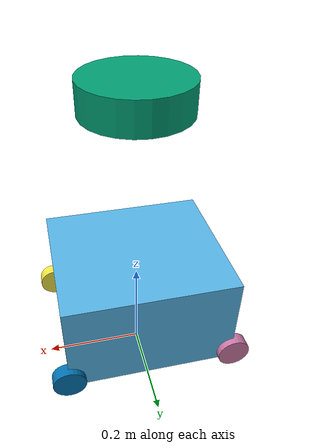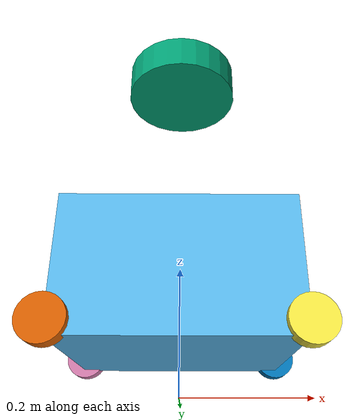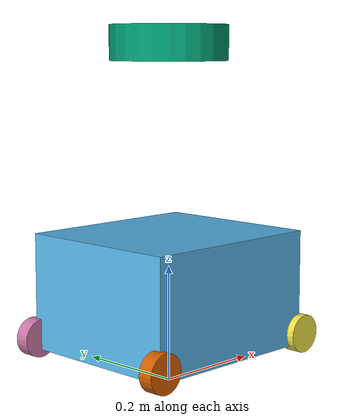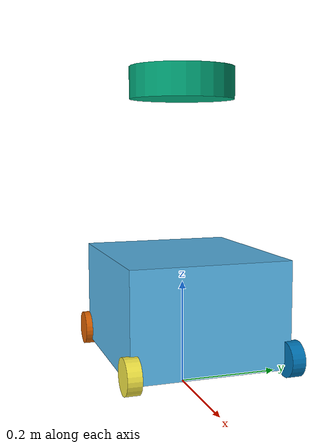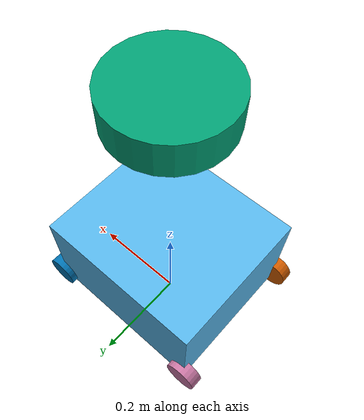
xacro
<?xml version="1.0"?>

<robot name="robix" xmlns:xacro="http://www.ros.org/wiki/xacro">

	  <!-- Include ros2_control Plugins -->
  	<xacro:include filename="$(find robix_description)/urdf/robix_ros2_control.xacro" />

	<!--xacro:arg name="is_sim" default="false"/-->

	<link name="base_footprint"/>

	<link name="base_link">
		<visual>
			<origin xyz="0 0 0.08"/>
			<geometry>
				<box size="0.34 0.30 0.20"/>
			</geometry>
		</visual>
		<collision>
			<origin xyz="0 0 0"/>
			<geometry>
				<box size="0.34 0.30 0.20"/>
			</geometry>
		</collision>
	</link>

	<!-- Primer Joint -->

	<joint name="base_joint" type="fixed">
		<parent link="base_footprint"/>
		<child link="base_link"/>
		<origin xyz="0 0 0.08"/>
	</joint>

	<link name="laser">
		<visual>
			<origin xyz="0 0 0" rpy="0 0 0"/>
			<geometry>
				<cylinder radius="0.1" length="0.06"/>
			</geometry>
		</visual>
		<collision>
			<origin xyz="0 0 0"/>
			<geometry>
				<box size="0.34 0.30 0.20"/>
			</geometry>
		</collision>
	</link>

	<joint name="base_scan_joint" type="fixed">
		<parent link="base_link"/>
		<child link="laser"/>
		<origin xyz="0 0 0.50 " rpy="0 0 0"/>
	</joint>

	<!-- Rueda Derecha -->

	<link name="right_wheel_link" >
		<visual>
			<origin xyz="0 0 0" rpy="1.57 0 0"/>
			<geometry>
				<cylinder radius="0.033" length="0.026"/>
			</geometry>
		</visual>
		<collision>
			<origin xyz="0 0 0" rpy="1.57 0 0"/>
			<geometry>
				<cylinder radius="0.033" length="0.026"/>
			</geometry>
		</collision>
	</link>

	<!-- Joint con Rueda Derecha -->

	<joint name="wheel_right_joint" type="continuous">
		<parent link="base_link"/>
		<child link="right_wheel_link" />
		<origin xyz="0.17 -0.15 0"/>
		<axis xyz="0 1 0" />
	</joint>

	<!-- Rueda Izquierda -->

	<link name="left_wheel_link" >
		<visual>
			<origin xyz="0 0 0" rpy="1.57 0 0"/>
			<geometry>
				<cylinder radius="0.033" length="0.026"/>
			</geometry>
		</visual>
		<collision>
			<origin xyz="0 0 0" rpy="1.57 0 0"/>
			<geometry>
				<cylinder radius="0.033" length="0.026"/>
			</geometry>
		</collision>
	</link>

	<joint name="wheel_left_joint" type="continuous">
		<parent link="base_link"/>
		<child link="left_wheel_link" />
		<origin xyz="0.17 0.15 0"/>
		<axis xyz="0 1 0" />
	</joint>

	<!-- Rueda Loca Derecha -->

	<link name="right_caster_wheel_link" >
		<visual>
			<origin xyz="0 0 0" rpy="1.57 0 0"/>
			<geometry>
				<cylinder radius="0.033" length="0.026"/>
			</geometry>
		</visual>
		<collision>
			<origin xyz="0 0 0" rpy="1.57 0 0"/>
			<geometry>
				<cylinder radius="0.033" length="0.026"/>
			</geometry>
		</collision>
	</link>

	<joint name="wheel_right_caster_joint" type="fixed">
		<parent link="base_link"/>
		<child link="right_caster_wheel_link" />
		<origin xyz="-0.17 -0.15 0"/>
	</joint>

	<!-- Rueda Loca Izquierda -->

	<link name="left_caster_wheel_link" >
		<visual>
			<origin xyz="0 0 0" rpy="1.57 0 0"/>
			<geometry>
				<cylinder radius="0.033" length="0.026"/>
			</geometry>
		</visual>
		<collision>
			<origin xyz="0 0 0" rpy="1.57 0 0"/>
			<geometry>
				<cylinder radius="0.033" length="0.026"/>
			</geometry>
		</collision>
	</link>

	<!-- Joint con Rueda Izquierda -->

	<joint name= "wheel_left_caster_joint" type="fixed">
		<parent link="base_link"/>
		<child link="left_caster_wheel_link" />
		<origin xyz="-0.17 0.15 0"/>
	</joint>

</robot>
